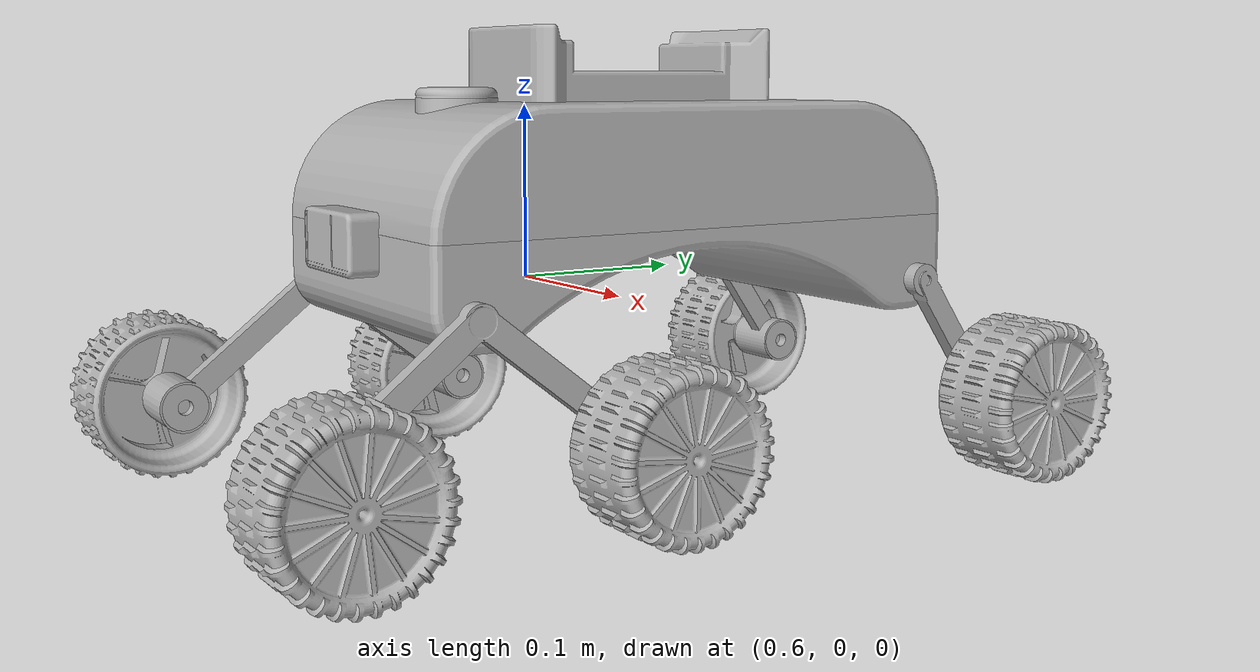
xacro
<?xml version="1.0" ?>
<robot name="rover_urdf_test3" xmlns:xacro="http://www.ros.org/wiki/xacro">

<xacro:include filename="$(find rover_urdf_test3_description)/urdf/materials.xacro" />
<xacro:include filename="$(find rover_urdf_test3_description)/urdf/rover_urdf_test3.trans" />
<xacro:include filename="$(find rover_urdf_test3_description)/urdf/rover_urdf_test3.gazebo" />
<link name="base_link">
  <inertial>
    <origin xyz="0.7000973727173087 0.001213812884788477 0.021729704951853716" rpy="0 0 0"/>
    <mass value="1.0018651206945566"/>
    <inertia ixx="0.011025" iyy="0.00289" izz="0.013559" ixy="-0.0" iyz="-1.3e-05" ixz="-0.0"/>
  </inertial>
  <visual>
    <origin xyz="0 0 0" rpy="0 0 0"/>
    <geometry>
      <mesh filename="package://rover_urdf_test3_description/meshes/base_link.stl" scale="0.001 0.001 0.001"/>
    </geometry>
    <material name="silver"/>
  </visual>
  <collision>
    <origin xyz="0 0 0" rpy="0 0 0"/>
    <geometry>
      <mesh filename="package://rover_urdf_test3_description/meshes/base_link.stl" scale="0.001 0.001 0.001"/>
    </geometry>
  </collision>
</link>

<link name="rover_leg12_1">
  <inertial>
    <origin xyz="0.005909983333544533 -1.4402368186949843e-13 -0.03362118819507126" rpy="0 0 0"/>
    <mass value="0.022576009218286612"/>
    <inertia ixx="8.4e-05" iyy="1.6e-05" izz="7e-05" ixy="-0.0" iyz="0.0" ixz="2e-06"/>
  </inertial>
  <visual>
    <origin xyz="-0.785097 0.13125 -0.010238" rpy="0 0 0"/>
    <geometry>
      <mesh filename="package://rover_urdf_test3_description/meshes/rover_leg12_1.stl" scale="0.001 0.001 0.001"/>
    </geometry>
    <material name="silver"/>
  </visual>
  <collision>
    <origin xyz="-0.785097 0.13125 -0.010238" rpy="0 0 0"/>
    <geometry>
      <mesh filename="package://rover_urdf_test3_description/meshes/rover_leg12_1.stl" scale="0.001 0.001 0.001"/>
    </geometry>
  </collision>
</link>

<link name="rover_leg34_1">
  <inertial>
    <origin xyz="-0.0059092378989266114 1.169342400686446e-13 -0.033621188195070414" rpy="0 0 0"/>
    <mass value="0.022576009218287705"/>
    <inertia ixx="8.4e-05" iyy="1.6e-05" izz="7e-05" ixy="0.0" iyz="-0.0" ixz="-2e-06"/>
  </inertial>
  <visual>
    <origin xyz="-0.615097 0.13125 -0.010238" rpy="0 0 0"/>
    <geometry>
      <mesh filename="package://rover_urdf_test3_description/meshes/rover_leg34_1.stl" scale="0.001 0.001 0.001"/>
    </geometry>
    <material name="silver"/>
  </visual>
  <collision>
    <origin xyz="-0.615097 0.13125 -0.010238" rpy="0 0 0"/>
    <geometry>
      <mesh filename="package://rover_urdf_test3_description/meshes/rover_leg34_1.stl" scale="0.001 0.001 0.001"/>
    </geometry>
  </collision>
</link>

<link name="rov_leg6_1">
  <inertial>
    <origin xyz="-0.00450154047246798 0.019807850297414303 -0.02773074523797494" rpy="0 0 0"/>
    <mass value="0.01719642610594528"/>
    <inertia ixx="1.6e-05" iyy="1.1e-05" izz="6e-06" ixy="1e-06" iyz="7e-06" ixz="-1e-06"/>
  </inertial>
  <visual>
    <origin xyz="-0.615097 -0.13125 -0.010238" rpy="0 0 0"/>
    <geometry>
      <mesh filename="package://rover_urdf_test3_description/meshes/rov_leg6_1.stl" scale="0.001 0.001 0.001"/>
    </geometry>
    <material name="silver"/>
  </visual>
  <collision>
    <origin xyz="-0.615097 -0.13125 -0.010238" rpy="0 0 0"/>
    <geometry>
      <mesh filename="package://rover_urdf_test3_description/meshes/rov_leg6_1.stl" scale="0.001 0.001 0.001"/>
    </geometry>
  </collision>
</link>

<link name="rov_leg5_1">
  <inertial>
    <origin xyz="0.004502285907085679 0.019807850297403395 -0.027730745237974832" rpy="0 0 0"/>
    <mass value="0.01719642610594526"/>
    <inertia ixx="1.6e-05" iyy="1.1e-05" izz="6e-06" ixy="-1e-06" iyz="7e-06" ixz="1e-06"/>
  </inertial>
  <visual>
    <origin xyz="-0.785097 -0.13125 -0.010238" rpy="0 0 0"/>
    <geometry>
      <mesh filename="package://rover_urdf_test3_description/meshes/rov_leg5_1.stl" scale="0.001 0.001 0.001"/>
    </geometry>
    <material name="silver"/>
  </visual>
  <collision>
    <origin xyz="-0.785097 -0.13125 -0.010238" rpy="0 0 0"/>
    <geometry>
      <mesh filename="package://rover_urdf_test3_description/meshes/rov_leg5_1.stl" scale="0.001 0.001 0.001"/>
    </geometry>
  </collision>
</link>

<link name="dc_motar6_1">
  <inertial>
    <origin xyz="-0.016999627282691332 3.6552571042181015e-07 1.3344237432405537e-07" rpy="0 0 0"/>
    <mass value="0.1073268581431187"/>
    <inertia ixx="9e-06" iyy="1.5e-05" izz="1.5e-05" ixy="0.0" iyz="0.0" ixz="0.0"/>
  </inertial>
  <visual>
    <origin xyz="-0.621197 -0.175169 0.051249" rpy="0 0 0"/>
    <geometry>
      <mesh filename="package://rover_urdf_test3_description/meshes/dc_motar6_1.stl" scale="0.001 0.001 0.001"/>
    </geometry>
    <material name="silver"/>
  </visual>
  <collision>
    <origin xyz="-0.621197 -0.175169 0.051249" rpy="0 0 0"/>
    <geometry>
      <mesh filename="package://rover_urdf_test3_description/meshes/dc_motar6_1.stl" scale="0.001 0.001 0.001"/>
    </geometry>
  </collision>
</link>

<link name="dc_motar6_axle__1">
  <inertial>
    <origin xyz="-0.012999627282692328 3.6552594548378003e-07 1.3344237426854422e-07" rpy="0 0 0"/>
    <mass value="0.01894003378996254"/>
    <inertia ixx="0.0" iyy="4e-06" izz="4e-06" ixy="0.0" iyz="0.0" ixz="0.0"/>
  </inertial>
  <visual>
    <origin xyz="-0.604197 -0.175169 0.051249" rpy="0 0 0"/>
    <geometry>
      <mesh filename="package://rover_urdf_test3_description/meshes/dc_motar6_axle__1.stl" scale="0.001 0.001 0.001"/>
    </geometry>
    <material name="silver"/>
  </visual>
  <collision>
    <origin xyz="-0.604197 -0.175169 0.051249" rpy="0 0 0"/>
    <geometry>
      <mesh filename="package://rover_urdf_test3_description/meshes/dc_motar6_axle__1.stl" scale="0.001 0.001 0.001"/>
    </geometry>
  </collision>
</link>

<link name="dc_motar4_1">
  <inertial>
    <origin xyz="-0.01699962728269422 4.331062625206883e-07 1.1269990164014532e-07" rpy="0 0 0"/>
    <mass value="0.1073268581431187"/>
    <inertia ixx="9e-06" iyy="1.5e-05" izz="1.5e-05" ixy="0.0" iyz="0.0" ixz="0.0"/>
  </inertial>
  <visual>
    <origin xyz="-0.620597 0.052414 0.05047" rpy="0 0 0"/>
    <geometry>
      <mesh filename="package://rover_urdf_test3_description/meshes/dc_motar4_1.stl" scale="0.001 0.001 0.001"/>
    </geometry>
    <material name="silver"/>
  </visual>
  <collision>
    <origin xyz="-0.620597 0.052414 0.05047" rpy="0 0 0"/>
    <geometry>
      <mesh filename="package://rover_urdf_test3_description/meshes/dc_motar4_1.stl" scale="0.001 0.001 0.001"/>
    </geometry>
  </collision>
</link>

<link name="dc_motar4_ax_1">
  <inertial>
    <origin xyz="-0.012999627282694104 4.3310607952817826e-07 1.1269990164708421e-07" rpy="0 0 0"/>
    <mass value="0.01894003378996256"/>
    <inertia ixx="0.0" iyy="4e-06" izz="4e-06" ixy="0.0" iyz="-0.0" ixz="0.0"/>
  </inertial>
  <visual>
    <origin xyz="-0.603597 0.052414 0.05047" rpy="0 0 0"/>
    <geometry>
      <mesh filename="package://rover_urdf_test3_description/meshes/dc_motar4_ax_1.stl" scale="0.001 0.001 0.001"/>
    </geometry>
    <material name="silver"/>
  </visual>
  <collision>
    <origin xyz="-0.603597 0.052414 0.05047" rpy="0 0 0"/>
    <geometry>
      <mesh filename="package://rover_urdf_test3_description/meshes/dc_motar4_ax_1.stl" scale="0.001 0.001 0.001"/>
    </geometry>
  </collision>
</link>

<link name="dc_motar3_ax_1">
  <inertial>
    <origin xyz="-0.012999627282693105 -4.3310649650019073e-07 1.1269990157769527e-07" rpy="0 0 0"/>
    <mass value="0.01894003378996254"/>
    <inertia ixx="0.0" iyy="4e-06" izz="4e-06" ixy="0.0" iyz="0.0" ixz="-0.0"/>
  </inertial>
  <visual>
    <origin xyz="-0.603597 0.210086 0.05047" rpy="0 0 0"/>
    <geometry>
      <mesh filename="package://rover_urdf_test3_description/meshes/dc_motar3_ax_1.stl" scale="0.001 0.001 0.001"/>
    </geometry>
    <material name="silver"/>
  </visual>
  <collision>
    <origin xyz="-0.603597 0.210086 0.05047" rpy="0 0 0"/>
    <geometry>
      <mesh filename="package://rover_urdf_test3_description/meshes/dc_motar3_ax_1.stl" scale="0.001 0.001 0.001"/>
    </geometry>
  </collision>
</link>

<link name="dc_motar3_1">
  <inertial>
    <origin xyz="-0.016999627282693885 -4.331063132578805e-07 1.1269990162626753e-07" rpy="0 0 0"/>
    <mass value="0.10732685814311867"/>
    <inertia ixx="9e-06" iyy="1.5e-05" izz="1.5e-05" ixy="0.0" iyz="0.0" ixz="-0.0"/>
  </inertial>
  <visual>
    <origin xyz="-0.620597 0.210086 0.05047" rpy="0 0 0"/>
    <geometry>
      <mesh filename="package://rover_urdf_test3_description/meshes/dc_motar3_1.stl" scale="0.001 0.001 0.001"/>
    </geometry>
    <material name="silver"/>
  </visual>
  <collision>
    <origin xyz="-0.620597 0.210086 0.05047" rpy="0 0 0"/>
    <geometry>
      <mesh filename="package://rover_urdf_test3_description/meshes/dc_motar3_1.stl" scale="0.001 0.001 0.001"/>
    </geometry>
  </collision>
</link>

<link name="dc_motar1_1">
  <inertial>
    <origin xyz="0.01700037271731314 -4.331063132578805e-07 1.1269990162626753e-07" rpy="0 0 0"/>
    <mass value="0.10732685814311867"/>
    <inertia ixx="9e-06" iyy="1.5e-05" izz="1.5e-05" ixy="-0.0" iyz="0.0" ixz="-0.0"/>
  </inertial>
  <visual>
    <origin xyz="-0.779597 0.210086 0.05047" rpy="0 0 0"/>
    <geometry>
      <mesh filename="package://rover_urdf_test3_description/meshes/dc_motar1_1.stl" scale="0.001 0.001 0.001"/>
    </geometry>
    <material name="silver"/>
  </visual>
  <collision>
    <origin xyz="-0.779597 0.210086 0.05047" rpy="0 0 0"/>
    <geometry>
      <mesh filename="package://rover_urdf_test3_description/meshes/dc_motar1_1.stl" scale="0.001 0.001 0.001"/>
    </geometry>
  </collision>
</link>

<link name="dc_motar1_axle_1">
  <inertial>
    <origin xyz="0.013000372717313469 -4.331064963336573e-07 1.1269990159851195e-07" rpy="0 0 0"/>
    <mass value="0.018940033789962514"/>
    <inertia ixx="0.0" iyy="4e-06" izz="4e-06" ixy="-0.0" iyz="0.0" ixz="-0.0"/>
  </inertial>
  <visual>
    <origin xyz="-0.796597 0.210086 0.05047" rpy="0 0 0"/>
    <geometry>
      <mesh filename="package://rover_urdf_test3_description/meshes/dc_motar1_axle_1.stl" scale="0.001 0.001 0.001"/>
    </geometry>
    <material name="silver"/>
  </visual>
  <collision>
    <origin xyz="-0.796597 0.210086 0.05047" rpy="0 0 0"/>
    <geometry>
      <mesh filename="package://rover_urdf_test3_description/meshes/dc_motar1_axle_1.stl" scale="0.001 0.001 0.001"/>
    </geometry>
  </collision>
</link>

<link name="dc_motar2_axle_1">
  <inertial>
    <origin xyz="0.01300037271731258 4.3310607951430047e-07 1.1269990164014532e-07" rpy="0 0 0"/>
    <mass value="0.01894003378996253"/>
    <inertia ixx="0.0" iyy="4e-06" izz="4e-06" ixy="-0.0" iyz="0.0" ixz="0.0"/>
  </inertial>
  <visual>
    <origin xyz="-0.796597 0.052414 0.05047" rpy="0 0 0"/>
    <geometry>
      <mesh filename="package://rover_urdf_test3_description/meshes/dc_motar2_axle_1.stl" scale="0.001 0.001 0.001"/>
    </geometry>
    <material name="silver"/>
  </visual>
  <collision>
    <origin xyz="-0.796597 0.052414 0.05047" rpy="0 0 0"/>
    <geometry>
      <mesh filename="package://rover_urdf_test3_description/meshes/dc_motar2_axle_1.stl" scale="0.001 0.001 0.001"/>
    </geometry>
  </collision>
</link>

<link name="dc_motar2_1">
  <inertial>
    <origin xyz="0.017000372717312917 4.331062625206883e-07 1.1269990164014532e-07" rpy="0 0 0"/>
    <mass value="0.1073268581431187"/>
    <inertia ixx="9e-06" iyy="1.5e-05" izz="1.5e-05" ixy="-0.0" iyz="0.0" ixz="0.0"/>
  </inertial>
  <visual>
    <origin xyz="-0.779597 0.052414 0.05047" rpy="0 0 0"/>
    <geometry>
      <mesh filename="package://rover_urdf_test3_description/meshes/dc_motar2_1.stl" scale="0.001 0.001 0.001"/>
    </geometry>
    <material name="silver"/>
  </visual>
  <collision>
    <origin xyz="-0.779597 0.052414 0.05047" rpy="0 0 0"/>
    <geometry>
      <mesh filename="package://rover_urdf_test3_description/meshes/dc_motar2_1.stl" scale="0.001 0.001 0.001"/>
    </geometry>
  </collision>
</link>

<link name="dc_motar5_axle_1">
  <inertial>
    <origin xyz="0.013000372717310693 3.6552552770685587e-07 1.33442374282422e-07" rpy="0 0 0"/>
    <mass value="0.01894003378996251"/>
    <inertia ixx="0.0" iyy="4e-06" izz="4e-06" ixy="-0.0" iyz="-0.0" ixz="-0.0"/>
  </inertial>
  <visual>
    <origin xyz="-0.795997 -0.175169 0.051249" rpy="0 0 0"/>
    <geometry>
      <mesh filename="package://rover_urdf_test3_description/meshes/dc_motar5_axle_1.stl" scale="0.001 0.001 0.001"/>
    </geometry>
    <material name="silver"/>
  </visual>
  <collision>
    <origin xyz="-0.795997 -0.175169 0.051249" rpy="0 0 0"/>
    <geometry>
      <mesh filename="package://rover_urdf_test3_description/meshes/dc_motar5_axle_1.stl" scale="0.001 0.001 0.001"/>
    </geometry>
  </collision>
</link>

<link name="dc_motar5_1">
  <inertial>
    <origin xyz="0.017000372717310253 3.6552571042181015e-07 1.3344237432405537e-07" rpy="0 0 0"/>
    <mass value="0.1073268581431187"/>
    <inertia ixx="9e-06" iyy="1.5e-05" izz="1.5e-05" ixy="-0.0" iyz="0.0" ixz="-0.0"/>
  </inertial>
  <visual>
    <origin xyz="-0.778997 -0.175169 0.051249" rpy="0 0 0"/>
    <geometry>
      <mesh filename="package://rover_urdf_test3_description/meshes/dc_motar5_1.stl" scale="0.001 0.001 0.001"/>
    </geometry>
    <material name="silver"/>
  </visual>
  <collision>
    <origin xyz="-0.778997 -0.175169 0.051249" rpy="0 0 0"/>
    <geometry>
      <mesh filename="package://rover_urdf_test3_description/meshes/dc_motar5_1.stl" scale="0.001 0.001 0.001"/>
    </geometry>
  </collision>
</link>

<link name="wheel3_1">
  <inertial>
    <origin xyz="0.003572019017357264 -2.3730644099773102e-07 9.907625724697722e-08" rpy="0 0 0"/>
    <mass value="0.14715563268227955"/>
    <inertia ixx="0.000148" iyy="9.4e-05" izz="9.4e-05" ixy="0.0" iyz="-0.0" ixz="-0.0"/>
  </inertial>
  <visual>
    <origin xyz="-0.566597 0.210086 0.05047" rpy="0 0 0"/>
    <geometry>
      <mesh filename="package://rover_urdf_test3_description/meshes/wheel3_1.stl" scale="0.001 0.001 0.001"/>
    </geometry>
    <material name="silver"/>
  </visual>
  <collision>
    <origin xyz="-0.566597 0.210086 0.05047" rpy="0 0 0"/>
    <geometry>
      <mesh filename="package://rover_urdf_test3_description/meshes/wheel3_1.stl" scale="0.001 0.001 0.001"/>
    </geometry>
  </collision>
</link>

<link name="wheel4_1">
  <inertial>
    <origin xyz="0.0035722707208897253 6.30513902206975e-07 9.907742837267364e-08" rpy="0 0 0"/>
    <mass value="0.14716828237578544"/>
    <inertia ixx="0.000148" iyy="9.4e-05" izz="9.4e-05" ixy="0.0" iyz="-0.0" ixz="-0.0"/>
  </inertial>
  <visual>
    <origin xyz="-0.566597 0.052414 0.05047" rpy="0 0 0"/>
    <geometry>
      <mesh filename="package://rover_urdf_test3_description/meshes/wheel4_1.stl" scale="0.001 0.001 0.001"/>
    </geometry>
    <material name="silver"/>
  </visual>
  <collision>
    <origin xyz="-0.566597 0.052414 0.05047" rpy="0 0 0"/>
    <geometry>
      <mesh filename="package://rover_urdf_test3_description/meshes/wheel4_1.stl" scale="0.001 0.001 0.001"/>
    </geometry>
  </collision>
</link>

<link name="wheel6_1">
  <inertial>
    <origin xyz="0.003572019023539985 5.652954421786482e-07 1.198107031571971e-07" rpy="0 0 0"/>
    <mass value="0.1471556326822817"/>
    <inertia ixx="0.000148" iyy="9.4e-05" izz="9.4e-05" ixy="0.0" iyz="-0.0" ixz="-0.0"/>
  </inertial>
  <visual>
    <origin xyz="-0.567197 -0.175169 0.051249" rpy="0 0 0"/>
    <geometry>
      <mesh filename="package://rover_urdf_test3_description/meshes/wheel6_1.stl" scale="0.001 0.001 0.001"/>
    </geometry>
    <material name="silver"/>
  </visual>
  <collision>
    <origin xyz="-0.567197 -0.175169 0.051249" rpy="0 0 0"/>
    <geometry>
      <mesh filename="package://rover_urdf_test3_description/meshes/wheel6_1.stl" scale="0.001 0.001 0.001"/>
    </geometry>
  </collision>
</link>

<link name="wheel1_1">
  <inertial>
    <origin xyz="-0.0035714127015948893 -4.7009295928157613e-07 -2.044612660914713e-07" rpy="0 0 0"/>
    <mass value="0.14716959270455743"/>
    <inertia ixx="0.000148" iyy="9.4e-05" izz="9.4e-05" ixy="0.0" iyz="0.0" ixz="0.0"/>
  </inertial>
  <visual>
    <origin xyz="-0.833597 0.210086 0.05047" rpy="0 0 0"/>
    <geometry>
      <mesh filename="package://rover_urdf_test3_description/meshes/wheel1_1.stl" scale="0.001 0.001 0.001"/>
    </geometry>
    <material name="silver"/>
  </visual>
  <collision>
    <origin xyz="-0.833597 0.210086 0.05047" rpy="0 0 0"/>
    <geometry>
      <mesh filename="package://rover_urdf_test3_description/meshes/wheel1_1.stl" scale="0.001 0.001 0.001"/>
    </geometry>
  </collision>
</link>

<link name="wheel2_1">
  <inertial>
    <origin xyz="-0.0035714127015994412 7.518920382698635e-07 7.571322951926973e-08" rpy="0 0 0"/>
    <mass value="0.14716959270455107"/>
    <inertia ixx="0.000148" iyy="9.4e-05" izz="9.4e-05" ixy="-0.0" iyz="-0.0" ixz="0.0"/>
  </inertial>
  <visual>
    <origin xyz="-0.833597 0.052414 0.05047" rpy="0 0 0"/>
    <geometry>
      <mesh filename="package://rover_urdf_test3_description/meshes/wheel2_1.stl" scale="0.001 0.001 0.001"/>
    </geometry>
    <material name="silver"/>
  </visual>
  <collision>
    <origin xyz="-0.833597 0.052414 0.05047" rpy="0 0 0"/>
    <geometry>
      <mesh filename="package://rover_urdf_test3_description/meshes/wheel2_1.stl" scale="0.001 0.001 0.001"/>
    </geometry>
  </collision>
</link>

<link name="wheel5_1">
  <inertial>
    <origin xyz="-0.003571233186838496 4.025227034465395e-07 4.545927109952941e-07" rpy="0 0 0"/>
    <mass value="0.14716057068662433"/>
    <inertia ixx="0.000148" iyy="9.4e-05" izz="9.4e-05" ixy="-0.0" iyz="0.0" ixz="-0.0"/>
  </inertial>
  <visual>
    <origin xyz="-0.832997 -0.175169 0.051249" rpy="0 0 0"/>
    <geometry>
      <mesh filename="package://rover_urdf_test3_description/meshes/wheel5_1.stl" scale="0.001 0.001 0.001"/>
    </geometry>
    <material name="silver"/>
  </visual>
  <collision>
    <origin xyz="-0.832997 -0.175169 0.051249" rpy="0 0 0"/>
    <geometry>
      <mesh filename="package://rover_urdf_test3_description/meshes/wheel5_1.stl" scale="0.001 0.001 0.001"/>
    </geometry>
  </collision>
</link>

<link name="back_camera_1">
  <inertial>
    <origin xyz="3.7012464515484567e-07 -3.682398265184017e-05 -0.007498185934772646" rpy="0 0 0"/>
    <mass value="0.007636091553825903"/>
    <inertia ixx="0.0" iyy="1e-06" izz="1e-06" ixy="0.0" iyz="-0.0" ixz="-0.0"/>
  </inertial>
  <visual>
    <origin xyz="-0.700097 -0.145 -0.0415" rpy="0 0 0"/>
    <geometry>
      <mesh filename="package://rover_urdf_test3_description/meshes/back_camera_1.stl" scale="0.001 0.001 0.001"/>
    </geometry>
    <material name="silver"/>
  </visual>
  <collision>
    <origin xyz="-0.700097 -0.145 -0.0415" rpy="0 0 0"/>
    <geometry>
      <mesh filename="package://rover_urdf_test3_description/meshes/back_camera_1.stl" scale="0.001 0.001 0.001"/>
    </geometry>
  </collision>
</link>

<link name="cover_1">
  <inertial>
    <origin xyz="3.720755304970069e-07 -0.1479961400556017 0.04593433425164602" rpy="0 0 0"/>
    <mass value="0.6079631145490446"/>
    <inertia ixx="0.004866" iyy="0.002425" izz="0.006674" ixy="-0.0" iyz="1.2e-05" ixz="-0.0"/>
  </inertial>
  <visual>
    <origin xyz="-0.700097 -0.15 -0.044" rpy="0 0 0"/>
    <geometry>
      <mesh filename="package://rover_urdf_test3_description/meshes/cover_1.stl" scale="0.001 0.001 0.001"/>
    </geometry>
    <material name="silver"/>
  </visual>
  <collision>
    <origin xyz="-0.700097 -0.15 -0.044" rpy="0 0 0"/>
    <geometry>
      <mesh filename="package://rover_urdf_test3_description/meshes/cover_1.stl" scale="0.001 0.001 0.001"/>
    </geometry>
  </collision>
</link>

<link name="camera_1">
  <inertial>
    <origin xyz="3.727173124579153e-07 -0.014608125530224086 0.014992719298696305" rpy="0 0 0"/>
    <mass value="0.04851657201774762"/>
    <inertia ixx="7e-06" iyy="1.6e-05" izz="1.5e-05" ixy="0.0" iyz="-0.0" ixz="0.0"/>
  </inertial>
  <visual>
    <origin xyz="-0.700097 0.135 -0.024" rpy="0 0 0"/>
    <geometry>
      <mesh filename="package://rover_urdf_test3_description/meshes/camera_1.stl" scale="0.001 0.001 0.001"/>
    </geometry>
    <material name="silver"/>
  </visual>
  <collision>
    <origin xyz="-0.700097 0.135 -0.024" rpy="0 0 0"/>
    <geometry>
      <mesh filename="package://rover_urdf_test3_description/meshes/camera_1.stl" scale="0.001 0.001 0.001"/>
    </geometry>
  </collision>
</link>

<link name="lidar_1">
  <inertial>
    <origin xyz="1.3014779991493697e-06 -0.00035540064376657354 0.0027852932894022603" rpy="0 0 0"/>
    <mass value="0.0025453141239423606"/>
    <inertia ixx="0.0" iyy="0.0" izz="1e-06" ixy="0.0" iyz="0.0" ixz="-0.0"/>
  </inertial>
  <visual>
    <origin xyz="-0.700097 0.095 -0.104" rpy="0 0 0"/>
    <geometry>
      <mesh filename="package://rover_urdf_test3_description/meshes/lidar_1.stl" scale="0.001 0.001 0.001"/>
    </geometry>
    <material name="silver"/>
  </visual>
  <collision>
    <origin xyz="-0.700097 0.095 -0.104" rpy="0 0 0"/>
    <geometry>
      <mesh filename="package://rover_urdf_test3_description/meshes/lidar_1.stl" scale="0.001 0.001 0.001"/>
    </geometry>
  </collision>
</link>

<link name="lidar_base_1">
  <inertial>
    <origin xyz="3.7271731145871456e-07 -5.86764872800849e-10 0.002028650060045878" rpy="0 0 0"/>
    <mass value="0.007902916123399882"/>
    <inertia ixx="1e-06" iyy="1e-06" izz="2e-06" ixy="-0.0" iyz="-0.0" ixz="0.0"/>
  </inertial>
  <visual>
    <origin xyz="-0.700097 0.095 -0.099" rpy="0 0 0"/>
    <geometry>
      <mesh filename="package://rover_urdf_test3_description/meshes/lidar_base_1.stl" scale="0.001 0.001 0.001"/>
    </geometry>
    <material name="silver"/>
  </visual>
  <collision>
    <origin xyz="-0.700097 0.095 -0.099" rpy="0 0 0"/>
    <geometry>
      <mesh filename="package://rover_urdf_test3_description/meshes/lidar_base_1.stl" scale="0.001 0.001 0.001"/>
    </geometry>
  </collision>
</link>

<joint name="Revolute 1" type="revolute">
  <origin xyz="0.785097 -0.13125 0.010238" rpy="0 0 0"/>
  <parent link="base_link"/>
  <child link="rover_leg12_1"/>
  <axis xyz="-1.0 0.0 0.0"/>
  <limit upper="0.523599" lower="-0.523599" effort="100" velocity="100"/>
</joint>

<joint name="Revolute 2" type="revolute">
  <origin xyz="0.615097 -0.13125 0.010238" rpy="0 0 0"/>
  <parent link="base_link"/>
  <child link="rover_leg34_1"/>
  <axis xyz="-1.0 0.0 0.0"/>
  <limit upper="0.523599" lower="-0.523599" effort="100" velocity="100"/>
</joint>

<joint name="Revolute 3" type="revolute">
  <origin xyz="0.615097 0.13125 0.010238" rpy="0 0 0"/>
  <parent link="base_link"/>
  <child link="rov_leg6_1"/>
  <axis xyz="-1.0 0.0 0.0"/>
  <limit upper="0.523599" lower="-0.523599" effort="100" velocity="100"/>
</joint>

<joint name="Revolute 6" type="revolute">
  <origin xyz="0.785097 0.13125 0.010238" rpy="0 0 0"/>
  <parent link="base_link"/>
  <child link="rov_leg5_1"/>
  <axis xyz="-1.0 0.0 0.0"/>
  <limit upper="0.523599" lower="-0.523599" effort="100" velocity="100"/>
</joint>

<joint name="Rigid 7" type="fixed">
  <origin xyz="0.0061 0.043919 -0.061487" rpy="0 0 0"/>
  <parent link="rov_leg6_1"/>
  <child link="dc_motar6_1"/>
</joint>

<joint name="Revolute 8" type="continuous">
  <origin xyz="-0.017 0.0 0.0" rpy="0 0 0"/>
  <parent link="dc_motar6_1"/>
  <child link="dc_motar6_axle__1"/>
  <axis xyz="-1.0 0.0 0.0"/>
</joint>

<joint name="Rigid 9" type="fixed">
  <origin xyz="0.0055 0.078836 -0.060708" rpy="0 0 0"/>
  <parent link="rover_leg34_1"/>
  <child link="dc_motar4_1"/>
</joint>

<joint name="Revolute 10" type="continuous">
  <origin xyz="-0.017 0.0 0.0" rpy="0 0 0"/>
  <parent link="dc_motar4_1"/>
  <child link="dc_motar4_ax_1"/>
  <axis xyz="-1.0 0.0 0.0"/>
</joint>

<joint name="Revolute 11" type="continuous">
  <origin xyz="-0.017 0.0 0.0" rpy="0 0 0"/>
  <parent link="dc_motar3_1"/>
  <child link="dc_motar3_ax_1"/>
  <axis xyz="-1.0 0.0 0.0"/>
</joint>

<joint name="Rigid 12" type="fixed">
  <origin xyz="0.0055 -0.078836 -0.060708" rpy="0 0 0"/>
  <parent link="rover_leg34_1"/>
  <child link="dc_motar3_1"/>
</joint>

<joint name="Rigid 13" type="fixed">
  <origin xyz="-0.0055 -0.078836 -0.060708" rpy="0 0 0"/>
  <parent link="rover_leg12_1"/>
  <child link="dc_motar1_1"/>
</joint>

<joint name="Revolute 14" type="continuous">
  <origin xyz="0.017 0.0 0.0" rpy="0 0 0"/>
  <parent link="dc_motar1_1"/>
  <child link="dc_motar1_axle_1"/>
  <axis xyz="-1.0 0.0 0.0"/>
</joint>

<joint name="Revolute 15" type="continuous">
  <origin xyz="0.017 0.0 0.0" rpy="0 0 0"/>
  <parent link="dc_motar2_1"/>
  <child link="dc_motar2_axle_1"/>
  <axis xyz="-1.0 0.0 0.0"/>
</joint>

<joint name="Rigid 16" type="fixed">
  <origin xyz="-0.0055 0.078836 -0.060708" rpy="0 0 0"/>
  <parent link="rover_leg12_1"/>
  <child link="dc_motar2_1"/>
</joint>

<joint name="Revolute 17" type="continuous">
  <origin xyz="0.017 0.0 0.0" rpy="0 0 0"/>
  <parent link="dc_motar5_1"/>
  <child link="dc_motar5_axle_1"/>
  <axis xyz="-1.0 0.0 0.0"/>
</joint>

<joint name="Rigid 18" type="fixed">
  <origin xyz="-0.0061 0.043919 -0.061487" rpy="0 0 0"/>
  <parent link="rov_leg5_1"/>
  <child link="dc_motar5_1"/>
</joint>

<joint name="Rigid 21" type="fixed">
  <origin xyz="-0.037 0.0 0.0" rpy="0 0 0"/>
  <parent link="dc_motar3_ax_1"/>
  <child link="wheel3_1"/>
</joint>

<joint name="Rigid 22" type="fixed">
  <origin xyz="-0.037 0.0 0.0" rpy="0 0 0"/>
  <parent link="dc_motar4_ax_1"/>
  <child link="wheel4_1"/>
</joint>

<joint name="Rigid 23" type="fixed">
  <origin xyz="-0.037 0.0 0.0" rpy="0 0 0"/>
  <parent link="dc_motar6_axle__1"/>
  <child link="wheel6_1"/>
</joint>

<joint name="Rigid 26" type="fixed">
  <origin xyz="0.037 0.0 0.0" rpy="0 0 0"/>
  <parent link="dc_motar1_axle_1"/>
  <child link="wheel1_1"/>
</joint>

<joint name="Rigid 27" type="fixed">
  <origin xyz="0.037 0.0 0.0" rpy="0 0 0"/>
  <parent link="dc_motar2_axle_1"/>
  <child link="wheel2_1"/>
</joint>

<joint name="Rigid 28" type="fixed">
  <origin xyz="0.037 0.0 0.0" rpy="0 0 0"/>
  <parent link="dc_motar5_axle_1"/>
  <child link="wheel5_1"/>
</joint>

<joint name="Rigid 29" type="fixed">
  <origin xyz="0.700097 0.145 0.0415" rpy="0 0 0"/>
  <parent link="base_link"/>
  <child link="back_camera_1"/>
</joint>

<joint name="Revolute 30" type="revolute">
  <origin xyz="0.700097 0.15 0.044" rpy="0 0 0"/>
  <parent link="base_link"/>
  <child link="cover_1"/>
  <axis xyz="-1.0 0.0 0.0"/>
  <limit upper="1.308997" lower="0.0" effort="100" velocity="100"/>
</joint>

<joint name="Rigid 31" type="fixed">
  <origin xyz="0.700097 -0.135 0.024" rpy="0 0 0"/>
  <parent link="base_link"/>
  <child link="camera_1"/>
</joint>

<joint name="Revolute 32" type="revolute">
  <origin xyz="0.0 0.0 0.005" rpy="0 0 0"/>
  <parent link="lidar_base_1"/>
  <child link="lidar_1"/>
  <axis xyz="0.0 0.0 1.0"/>
  <limit upper="1.570796" lower="-1.570796" effort="100" velocity="100"/>
</joint>

<joint name="Rigid 33" type="fixed">
  <origin xyz="0.0 -0.245 0.055" rpy="0 0 0"/>
  <parent link="cover_1"/>
  <child link="lidar_base_1"/>
</joint>

</robot>

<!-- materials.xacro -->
<robot name="rover_urdf_test3" xmlns:xacro="http://www.ros.org/wiki/xacro" >

<material name="silver">
  <color rgba="0.700 0.700 0.700 1.000"/>
</material>

</robot>

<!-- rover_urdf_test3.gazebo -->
<robot name="rover_urdf_test3" xmlns:xacro="http://www.ros.org/wiki/xacro" >

<xacro:property name="body_color" value="Gazebo/Silver" />

<gazebo>
  <plugin name="control" filename="libgazebo_ros_control.so"/>
</gazebo>
<gazebo reference="base_link">
  <material>${body_color}</material>
  <mu1>0.2</mu1>
  <mu2>0.2</mu2>
  <selfCollide>true</selfCollide>
  <gravity>true</gravity>
</gazebo>

<gazebo reference="rover_leg12_1">
  <material>${body_color}</material>
  <mu1>0.2</mu1>
  <mu2>0.2</mu2>
  <selfCollide>true</selfCollide>
</gazebo>

<gazebo reference="rover_leg34_1">
  <material>${body_color}</material>
  <mu1>0.2</mu1>
  <mu2>0.2</mu2>
  <selfCollide>true</selfCollide>
</gazebo>

<gazebo reference="rov_leg6_1">
  <material>${body_color}</material>
  <mu1>0.2</mu1>
  <mu2>0.2</mu2>
  <selfCollide>true</selfCollide>
</gazebo>

<gazebo reference="rov_leg5_1">
  <material>${body_color}</material>
  <mu1>0.2</mu1>
  <mu2>0.2</mu2>
  <selfCollide>true</selfCollide>
</gazebo>

<gazebo reference="dc_motar6_1">
  <material>${body_color}</material>
  <mu1>0.2</mu1>
  <mu2>0.2</mu2>
  <selfCollide>true</selfCollide>
</gazebo>

<gazebo reference="dc_motar6_axle__1">
  <material>${body_color}</material>
  <mu1>0.2</mu1>
  <mu2>0.2</mu2>
  <selfCollide>true</selfCollide>
</gazebo>

<gazebo reference="dc_motar4_1">
  <material>${body_color}</material>
  <mu1>0.2</mu1>
  <mu2>0.2</mu2>
  <selfCollide>true</selfCollide>
</gazebo>

<gazebo reference="dc_motar4_ax_1">
  <material>${body_color}</material>
  <mu1>0.2</mu1>
  <mu2>0.2</mu2>
  <selfCollide>true</selfCollide>
</gazebo>

<gazebo reference="dc_motar3_ax_1">
  <material>${body_color}</material>
  <mu1>0.2</mu1>
  <mu2>0.2</mu2>
  <selfCollide>true</selfCollide>
</gazebo>

<gazebo reference="dc_motar3_1">
  <material>${body_color}</material>
  <mu1>0.2</mu1>
  <mu2>0.2</mu2>
  <selfCollide>true</selfCollide>
</gazebo>

<gazebo reference="dc_motar1_1">
  <material>${body_color}</material>
  <mu1>0.2</mu1>
  <mu2>0.2</mu2>
  <selfCollide>true</selfCollide>
</gazebo>

<gazebo reference="dc_motar1_axle_1">
  <material>${body_color}</material>
  <mu1>0.2</mu1>
  <mu2>0.2</mu2>
  <selfCollide>true</selfCollide>
</gazebo>

<gazebo reference="dc_motar2_axle_1">
  <material>${body_color}</material>
  <mu1>0.2</mu1>
  <mu2>0.2</mu2>
  <selfCollide>true</selfCollide>
</gazebo>

<gazebo reference="dc_motar2_1">
  <material>${body_color}</material>
  <mu1>0.2</mu1>
  <mu2>0.2</mu2>
  <selfCollide>true</selfCollide>
</gazebo>

<gazebo reference="dc_motar5_axle_1">
  <material>${body_color}</material>
  <mu1>0.2</mu1>
  <mu2>0.2</mu2>
  <selfCollide>true</selfCollide>
</gazebo>

<gazebo reference="dc_motar5_1">
  <material>${body_color}</material>
  <mu1>0.2</mu1>
  <mu2>0.2</mu2>
  <selfCollide>true</selfCollide>
</gazebo>

<gazebo reference="wheel3_1">
  <material>${body_color}</material>
  <mu1>0.2</mu1>
  <mu2>0.2</mu2>
  <selfCollide>true</selfCollide>
</gazebo>

<gazebo reference="wheel4_1">
  <material>${body_color}</material>
  <mu1>0.2</mu1>
  <mu2>0.2</mu2>
  <selfCollide>true</selfCollide>
</gazebo>

<gazebo reference="wheel6_1">
  <material>${body_color}</material>
  <mu1>0.2</mu1>
  <mu2>0.2</mu2>
  <selfCollide>true</selfCollide>
</gazebo>

<gazebo reference="wheel1_1">
  <material>${body_color}</material>
  <mu1>0.2</mu1>
  <mu2>0.2</mu2>
  <selfCollide>true</selfCollide>
</gazebo>

<gazebo reference="wheel2_1">
  <material>${body_color}</material>
  <mu1>0.2</mu1>
  <mu2>0.2</mu2>
  <selfCollide>true</selfCollide>
</gazebo>

<gazebo reference="wheel5_1">
  <material>${body_color}</material>
  <mu1>0.2</mu1>
  <mu2>0.2</mu2>
  <selfCollide>true</selfCollide>
</gazebo>

<gazebo reference="back_camera_1">
  <material>${body_color}</material>
  <mu1>0.2</mu1>
  <mu2>0.2</mu2>
  <selfCollide>true</selfCollide>
</gazebo>

<gazebo reference="cover_1">
  <material>${body_color}</material>
  <mu1>0.2</mu1>
  <mu2>0.2</mu2>
  <selfCollide>true</selfCollide>
</gazebo>

<gazebo reference="camera_1">
  <material>${body_color}</material>
  <mu1>0.2</mu1>
  <mu2>0.2</mu2>
  <selfCollide>true</selfCollide>
</gazebo>

<gazebo reference="lidar_1">
  <material>${body_color}</material>
  <mu1>0.2</mu1>
  <mu2>0.2</mu2>
  <selfCollide>true</selfCollide>
</gazebo>

<gazebo reference="lidar_base_1">
  <material>${body_color}</material>
  <mu1>0.2</mu1>
  <mu2>0.2</mu2>
  <selfCollide>true</selfCollide>
</gazebo>

</robot>
